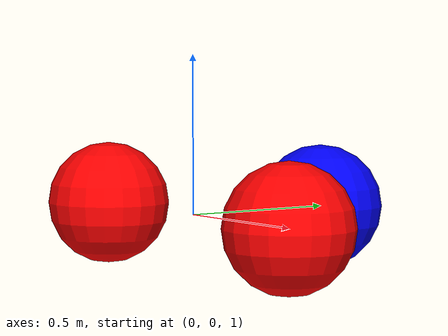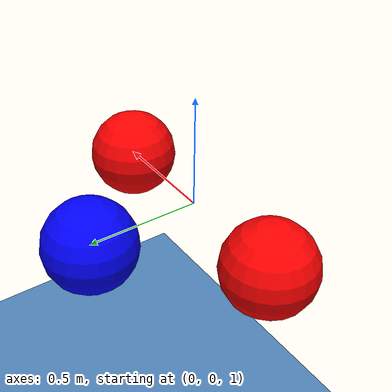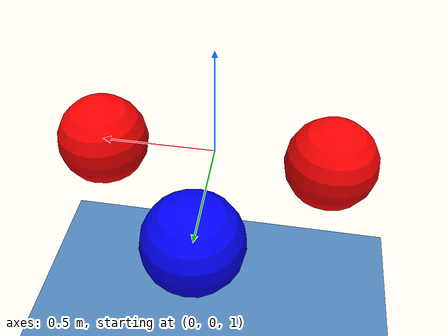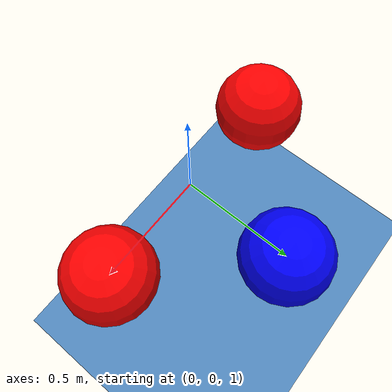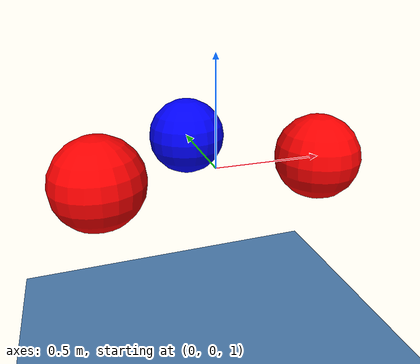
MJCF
<mujoco>
    <worldbody>
        <light diffuse=".5 .5 .5" pos="0 0 3" dir="0 0 -1"/>
        <geom type="plane" size="5 5 0.1" rgba="0.3 0.5 0.7 1"/>
        <body name="red_ball_1" pos="-0.5 0 1">
            <joint type="free"/>
            <geom type="sphere" size="0.2" rgba="1 0 0 1"/>
        </body>
        <body name="red_ball_2" pos="0.5 0 1">
            <joint type="free"/>
            <geom type="sphere" size="0.2" rgba="1 0 0 1"/>
        </body>
        <body name="blue_ball" pos="0 0.5 1">
            <joint type="free"/>
            <geom type="sphere" size="0.2" rgba="0 0 1 1"/>
        </body>
    </worldbody>
</mujoco>
